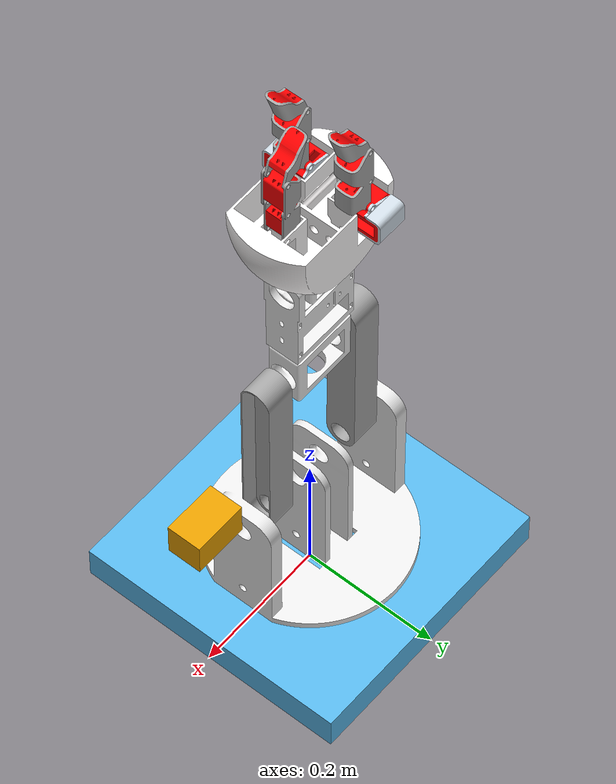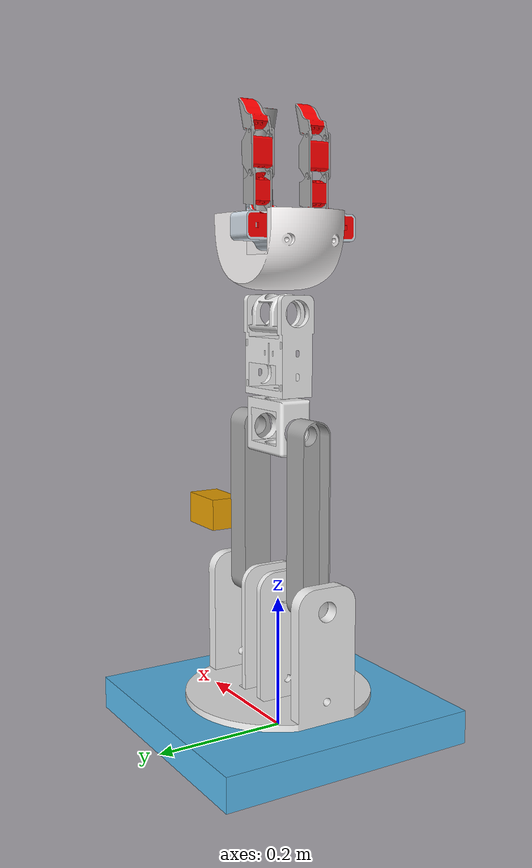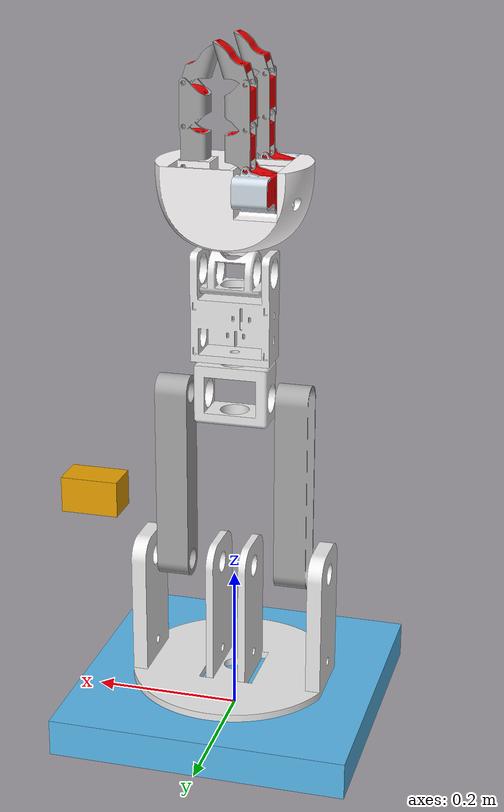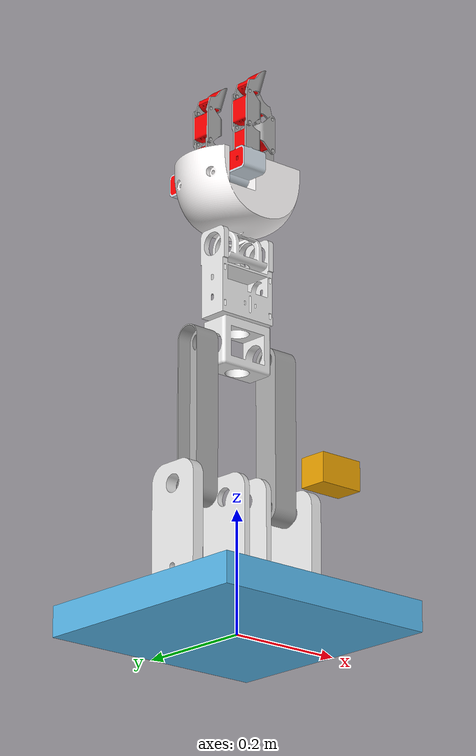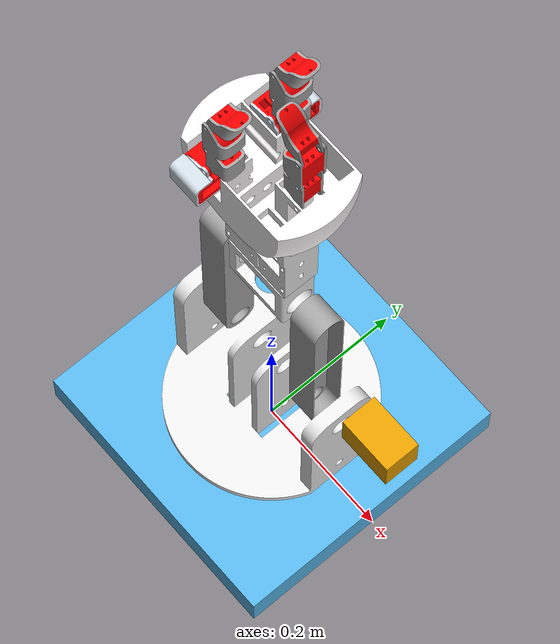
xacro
<?xml version="1.0" ?>
<robot xmlns:xacro="http://www.ros.org/wiki/xacro" name="robot">

    <!-- # include statements, much like import statements -->
    <xacro:include filename="$(find arm_urdf)/urdf/arm_urdf.xacro"/>
    <xacro:include filename="$(find arm_urdf)/urdf/arm_gazebo.xacro"/>
    <xacro:include filename="$(find arm_urdf)/urdf/arm_control.xacro"/>

    <!-- # constants -->
    <xacro:property name="arm_prefix" value="arm1" />

    <!-- # Etc -->
    <!-- NOTE: order of execution of xacro does not matter -->

    <!-- name must be kept as "world" for it is a Gazebo keyword for world origin -->
    <link name="world"/>

    <!-- using arm macro defined in arm_urdf.xacro to define robot -->
    <xacro:arm prefix="${arm_prefix}"/>
    <xacro:arm_gazebo_setting prefix="${arm_prefix}"/>
    <xacro:arm_control_setting prefix="${arm_prefix}" />

    <!-- connect the arm to world with fixed joint -->
    <joint name="base" type="fixed">
        <parent link="world" />
        <child link="${arm_prefix}_base_fixed" />
    </joint>

    <!--Kinect-->
    <!-- position of kinect has to be changed in common_sensors/urdf/sensors/kinect_properties.urdf.xacro-->

    <gazebo reference="${arm_prefix}_camera_link">
        <sensor name="${arm_prefix}_camera" type="depth">
            <update_rate>20</update_rate>
            <camera>
            <horizontal_fov>1.047198</horizontal_fov>
            <image>
                <width>640</width>
                <height>480</height>
                <format>R8G8B8</format>
            </image>
            <clip>
                <near>0.05</near>
                <far>3</far>
            </clip>
            </camera>
            <plugin name="${arm_prefix}_kinetic_camera_controller" filename="libgazebo_ros_openni_kinect.so">
            <baseline>0.2</baseline>
            <alwaysOn>true</alwaysOn>
            <updateRate>1.0</updateRate>
            <cameraName>${arm_prefix}_camera_ir</cameraName>
            <imageTopicName>/${arm_prefix}_camera/color/image_raw</imageTopicName>
            <cameraInfoTopicName>/${arm_prefix}_camera/color/camera_info</cameraInfoTopicName>
            <depthImageTopicName>/${arm_prefix}_camera/depth/image_raw</depthImageTopicName>
            <depthImageInfoTopicName>/${arm_prefix}_camera/depth/camera_info</depthImageInfoTopicName>
            <pointCloudTopicName>/${arm_prefix}_camera/depth/points</pointCloudTopicName>
            <frameName>${arm_prefix}_camera_link</frameName>
            <pointCloudCutoff>0.5</pointCloudCutoff>
            <pointCloudCutoffMax>3.0</pointCloudCutoffMax>
            <distortionK1>0.00000001</distortionK1>
            <distortionK2>0.00000001</distortionK2>
            <distortionK3>0.00000001</distortionK3>
            <distortionT1>0.00000001</distortionT1>
            <distortionT2>0.00000001</distortionT2>
            <CxPrime>0</CxPrime>
            <Cx>0</Cx>
            <Cy>0</Cy>
            <focalLength>0</focalLength>
            <hackBaseline>0</hackBaseline>
            </plugin>
        </sensor>
    </gazebo>

</robot>

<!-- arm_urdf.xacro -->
<robot xmlns:xacro="http://www.ros.org/wiki/xacro" name="robot">
    <!-- import  -->
    <xacro:include filename="$(find arm_urdf)/urdf/gripper_urdf.xacro"/>

    <xacro:macro name="arm" params="prefix">

        <!-- links -->

        <link name="${prefix}_base_fixed">
            <visual>
            <origin rpy="0 0 0" xyz="0 0 0.025"/>
            <geometry>
                <box size="0.4 0.4 0.05"/>
            </geometry>
            </visual>

            <collision>
            <origin rpy="0 0 0" xyz="0 0 0.025"/>
            <geometry>
                <box size="0.4 0.4 0.05"/>
            </geometry>
            </collision>

            <inertial>
            <mass value="0.5"/>
            <inertia ixx="0.4" ixy="0.0" ixz="0.0" iyy="0.4" iyz="0.0" izz="0.2"/>
            </inertial>
        </link>

        <link name="${prefix}_base">
            <visual>
            <origin rpy="0.0 0 0" xyz="0 0 0"/>
            <geometry>
                <mesh filename="package://arm_urdf/meshes/Base.dae"/>
            </geometry>
            </visual>

            <collision>
            <origin rpy="0.0 0 0" xyz="0 0 0"/>
            <geometry>
                <mesh filename="package://arm_urdf/meshes/Base.dae"/>
            </geometry>
            </collision>

            <inertial>
            <mass value="0.5"/>
            <inertia ixx="0.4" ixy="0.0" ixz="0.0" iyy="0.4" iyz="0.0" izz="0.2"/>
            </inertial>
        </link>

        <link name="${prefix}_bridge">
            <visual>
            <origin rpy="0.0 0 ${radians(-90)}" xyz="0.07 0 0.104"/>
            <geometry>
                <mesh filename="package://arm_urdf/meshes/Bridge.dae"/>
            </geometry>
            </visual>

            <collision>
            <origin rpy="0.0 0 ${radians(-90)}" xyz="0.07 0 0.104"/>
            <geometry>
                <mesh filename="package://arm_urdf/meshes/Bridge.dae"/>
            </geometry>
            </collision>

            <inertial>
            <mass value="0.5"/>
            <inertia ixx="0.4" ixy="0.0" ixz="0.0" iyy="0.4" iyz="0.0" izz="0.2"/>
            </inertial>
        </link>

        <link name="${prefix}_bridge2">
            <visual>
            <origin rpy="0.0 0 ${radians(90)}" xyz="-0.07 0 0.104"/>
            <geometry>
                <mesh filename="package://arm_urdf/meshes/Bridge.dae"/>
            </geometry>
            </visual>

            <collision>
            <origin rpy="0.0 0 ${radians(90)}" xyz="-0.07 0 0.104"/>
            <geometry>
                <mesh filename="package://arm_urdf/meshes/Bridge.dae"/>
            </geometry>
            </collision>

            <inertial>
            <mass value="0.5"/>
            <inertia ixx="0.4" ixy="0.0" ixz="0.0" iyy="0.4" iyz="0.0" izz="0.2"/>
            </inertial>
        </link>

        <link name="${prefix}_housing">
            <visual>
            <origin rpy="0.0 0 0" xyz="0 0 0"/>
            <geometry>
                <mesh filename="package://arm_urdf/meshes/Housing.dae"/>
            </geometry>
            </visual>

            <collision>
            <origin rpy="0.0 0 0" xyz="0 0 0"/>
            <geometry>
                <mesh filename="package://arm_urdf/meshes/Housing.dae"/>
            </geometry>
            </collision>

            <inertial>
            <mass value="0.5"/>
            <inertia ixx="0.4" ixy="0.0" ixz="0.0" iyy="0.4" iyz="0.0" izz="0.2"/>
            </inertial>
        </link>

        <link name="${prefix}_wrist_link">
            <visual>
            <origin rpy="0.0 0 0" xyz="0 0 0"/>
            <geometry>
                <mesh filename="package://arm_urdf/meshes/Wrist Link.dae"/>
            </geometry>
            </visual>

            <collision>
            <origin rpy="0.0 0 0" xyz="0 0 0"/>
            <geometry>
                <mesh filename="package://arm_urdf/meshes/Wrist Link.dae"/>
            </geometry>
            </collision>

            <inertial>
            <mass value="0.5"/>
            <inertia ixx="0.4" ixy="0.0" ixz="0.0" iyy="0.4" iyz="0.0" izz="0.2"/>
            </inertial>
        </link>

        <link name="${prefix}_wrist_cuff">
            <visual>
            <origin rpy="0.0 ${radians(180)} 0" xyz="0 0.027 -0.0255"/>
            <geometry>
                <mesh filename="package://arm_urdf/meshes/Wrist Cuff.dae"/>
            </geometry>
            </visual>

            <collision>
            <origin rpy="0.0 ${radians(180)} 0" xyz="0 0.027 -0.0255"/>
            <geometry>
                <mesh filename="package://arm_urdf/meshes/Wrist Cuff.dae"/>
            </geometry>
            </collision>

            <inertial>
            <mass value="0.5"/>
            <inertia ixx="0.4" ixy="0.0" ixz="0.0" iyy="0.4" iyz="0.0" izz="0.2"/>
            </inertial>
        </link>

        <!-- camera link -->
        <link name="${prefix}_camera_link">
            <visual>
            <origin rpy="0.0 ${radians(180)} 0" xyz="0 0 0"/>
            <geometry>
                <box size="0.08 0.05 0.05"/>
            </geometry>
            </visual>

            <collision>
            <origin rpy="0.0 ${radians(180)} 0" xyz="0 0 0"/>
            <geometry>
                <box size="0.08 0.05 0.05"/>
            </geometry>
            </collision>

            <inertial>
            <mass value="0.5"/>
            <inertia ixx="0.4" ixy="0.0" ixz="0.0" iyy="0.4" iyz="0.0" izz="0.2"/>
            </inertial>
        </link>

        <!-- gripper -->
        <xacro:gripper prefix="${prefix}"/>

        <!-- joints -->
        <joint name="${prefix}_base_fixed_base_joint" type="revolute">
            <origin rpy="0 0 0" xyz="0 0 0.05"/>
            <axis xyz="0 0 1"/>
            <limit effort="1000.0" lower="${radians(-180)}" upper="${radians(180)}" velocity="2.5"/>
            <parent link="${prefix}_base_fixed" />
            <child link="${prefix}_base" />

            <dynamics D="1" K="7000" mu_coulomb="0" mu_viscous="16" damping="0.003" friction="0.0"/>
        </joint>

        <joint name="${prefix}_base_bridge_joint" type="revolute">
            <origin rpy="0.0 0 0" xyz="0.0 0 0.165"/>
            <axis xyz="1 0 0"/>
            <limit effort="1000.0" lower="${radians(-120)}" upper="${radians(120)}" velocity="2.5"/>
            <parent link="${prefix}_base" />
            <child link="${prefix}_bridge" />

            <dynamics D="1" K="7000" mu_coulomb="0" mu_viscous="16" damping="0.003" friction="0.0"/>
        </joint>

        <joint name="${prefix}_bridge_bridge2_joint" type="fixed">
            <origin rpy="0.0 0 0" xyz="0.0 0 0"/>
            <parent link="${prefix}_bridge" />
            <child link="${prefix}_bridge2" />
        </joint>

        <joint name="${prefix}_bridge_housing_joint" type="revolute">
            <origin rpy="0 0 0" xyz="0 0 0.24875"/>
            <axis xyz="1 0 0"/>
            <limit effort="1000.0" lower="${radians(-165)}" upper="${radians(165)}" velocity="2.5"/>
            <parent link="${prefix}_bridge" />
            <child link="${prefix}_housing" />

            <dynamics D="1" K="7000" mu_coulomb="0" mu_viscous="16" damping="0.003" friction="0.0"/>
        </joint>

        <joint name="${prefix}_housing_wrist_link_joint" type="revolute">
            <origin rpy="0 0 0" xyz="0 0 0.045"/>
            <axis xyz="0 0 1"/>
            <limit effort="1000.0" lower="${radians(-180)}" upper="${radians(180)}" velocity="2.5"/>
            <parent link="${prefix}_housing" />
            <child link="${prefix}_wrist_link" />

            <dynamics D="1" K="7000" mu_coulomb="0" mu_viscous="16" damping="0.003" friction="0.0"/>
        </joint>

        <joint name="${prefix}_wrist_link_wrist_cuff_joint" type="revolute">
            <origin rpy="0 0 0" xyz="0 0.0 0.122"/>
            <axis xyz="1 0 0"/>
            <limit effort="1000.0" lower="${radians(-85)}" upper="${radians(85)}" velocity="2.5"/>
            <parent link="${prefix}_wrist_link" />
            <child link="${prefix}_wrist_cuff" />

            <dynamics D="1" K="7000" mu_coulomb="0" mu_viscous="16" damping="0.003" friction="0.0"/>
        </joint>

        <!-- camera joint -->
        <joint name="${prefix}_base_fixed_camera_link_joint" type="fixed">
            <origin rpy="0 0 0" xyz="0.2 0 0.3"/>
            <parent link="${prefix}_base_fixed" />
            <child link="${prefix}_camera_link" />
        </joint>

        <!-- gripper joint  -->
        <joint name="${prefix}_wrist_cuff_palm_joint" type="fixed">
            <origin rpy="0 0 0" xyz="0 0.0 0.03"/>
            <parent link="${prefix}_wrist_cuff" />
            <child link="${prefix}_palm" />
        </joint>

    </xacro:macro>
</robot>

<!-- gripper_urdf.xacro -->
<robot xmlns:xacro="http://www.ros.org/wiki/xacro">
    <xacro:macro name="gripper" params="prefix">

        <!-- links -->
        <link name="${prefix}_palm">
            <visual>
            <origin rpy="0 0 0" xyz="0 0 0.11"/>
            <geometry>
                <mesh filename="package://arm_urdf/meshes/Palm.dae"/>
            </geometry>
            </visual>

            <collision>
            <origin rpy="0 0 0" xyz="0 0 0.11"/>
            <geometry>
                <mesh filename="package://arm_urdf/meshes/Palm.dae"/>
            </geometry>
            </collision>

            <inertial>
            <mass value="0.5"/>
            <inertia ixx="0.4" ixy="0.0" ixz="0.0" iyy="0.4" iyz="0.0" izz="0.2"/>
            </inertial>
        </link>

        <!-- left finger -->
        <link name="${prefix}_hub_left">
            <visual>
            <origin rpy="0 0 ${radians(90)}" xyz="0 0.02 0.002"/>
            <geometry>
                <mesh filename="package://arm_urdf/meshes/Hub Left.dae"/>
            </geometry>
            </visual>

            <collision>
            <origin rpy="0 0 ${radians(90)}" xyz="0 0.02 0.002"/>
            <geometry>
                <mesh filename="package://arm_urdf/meshes/Hub Left.dae"/>
            </geometry>
            </collision>

            <inertial>
            <mass value="0.5"/>
            <inertia ixx="0.4" ixy="0.0" ixz="0.0" iyy="0.4" iyz="0.0" izz="0.2"/>
            </inertial>
        </link>

        <link name="${prefix}_finger_left">
            <visual>
            <origin rpy="0 ${radians(90)} ${radians(90)}" xyz="-0.002 0 0.02"/>
            <geometry>
                <mesh filename="package://arm_urdf/meshes/Finger Assembly.dae"/>
            </geometry>
            </visual>

            <collision>
            <origin rpy="0 ${radians(90)} ${radians(90)}" xyz="-0.002 0 0.02"/>
            <geometry>
                <mesh filename="package://arm_urdf/meshes/Finger Assembly.dae"/>
            </geometry>
            </collision>

            <inertial>
            <mass value="0.5"/>
            <inertia ixx="0.4" ixy="0.0" ixz="0.0" iyy="0.4" iyz="0.0" izz="0.2"/>
            </inertial>
        </link>

        <!-- right finger -->
        <link name="${prefix}_hub_right">
            <visual>
            <origin rpy="0 0 ${radians(90)}" xyz="0 0.02 0.002"/>
            <geometry>
                <mesh filename="package://arm_urdf/meshes/Hub Right.dae"/>
            </geometry>
            </visual>

            <collision>
            <origin rpy="0 0 ${radians(90)}" xyz="0 0.02 0.002"/>
            <geometry>
                <mesh filename="package://arm_urdf/meshes/Hub Right.dae"/>
            </geometry>
            </collision>

            <inertial>
            <mass value="0.5"/>
            <inertia ixx="0.4" ixy="0.0" ixz="0.0" iyy="0.4" iyz="0.0" izz="0.2"/>
            </inertial>
        </link>

        <link name="${prefix}_finger_right">
            <visual>
            <origin rpy="0 ${radians(90)} ${radians(90)}" xyz="-0.002 0 0.02"/>
            <geometry>
                <mesh filename="package://arm_urdf/meshes/Finger Assembly.dae"/>
            </geometry>
            </visual>

            <collision>
            <origin rpy="0 ${radians(90)} ${radians(90)}" xyz="-0.002 0 0.02"/>
            <geometry>
                <mesh filename="package://arm_urdf/meshes/Finger Assembly.dae"/>
            </geometry>
            </collision>

            <inertial>
            <mass value="0.5"/>
            <inertia ixx="0.4" ixy="0.0" ixz="0.0" iyy="0.4" iyz="0.0" izz="0.2"/>
            </inertial>
        </link>

        <link name="${prefix}_finger_thumb">
            <visual>
            <origin rpy="0 ${radians(90)} ${radians(90)}" xyz="-0.002 0 0.02"/>
            <geometry>
                <mesh filename="package://arm_urdf/meshes/Finger Assembly.dae"/>
            </geometry>
            </visual>

            <collision>
            <origin rpy="0 ${radians(90)} ${radians(90)}" xyz="-0.002 0 0.02"/>
            <geometry>
                <mesh filename="package://arm_urdf/meshes/Finger Assembly.dae"/>
            </geometry>
            </collision>

            <inertial>
            <mass value="0.5"/>
            <inertia ixx="0.4" ixy="0.0" ixz="0.0" iyy="0.4" iyz="0.0" izz="0.2"/>
            </inertial>
        </link>

        <!-- joints -->

        <!-- left finger joints  -->
        <joint name="${prefix}_palm_hub_left_joint" type="revolute">
            <origin rpy="0 0 0" xyz="-0.065 -0.038 0.068"/>
            <axis xyz="1 0 0"/>
            <limit effort="1000.0" lower="${radians(0)}" upper="${radians(35)}" velocity="0.5"/>
            <parent link="${prefix}_palm" />
            <child link="${prefix}_hub_left" />

            <dynamics D="1" K="7000" mu_coulomb="0" mu_viscous="16" damping="0.003" friction="0.0"/>
        </joint>

        <joint name="${prefix}_hub_left_finger_left_joint" type="revolute">
            <origin rpy="0 0 0" xyz="0.033 -0.0145 0.043"/>
            <axis xyz="0 1 0"/>
            <limit effort="1000.0" lower="${radians(-80)}" upper="${radians(15)}" velocity="0.5"/>
            <parent link="${prefix}_hub_left" />
            <child link="${prefix}_finger_left" />

            <dynamics D="1" K="7000" mu_coulomb="0" mu_viscous="16" damping="0.003" friction="0.0"/>
        </joint>

        <!-- right finger joints  -->
        <joint name="${prefix}_palm_hub_right_joint" type="revolute">
            <origin rpy="0 0 0" xyz="-0.065 0.038 0.068"/>
            <axis xyz="1 0 0"/>
            <limit effort="1000.0" lower="${radians(-35)}" upper="${radians(0)}" velocity="0.5"/>
            <parent link="${prefix}_palm" />
            <child link="${prefix}_hub_right" />

            <dynamics D="1" K="7000" mu_coulomb="0" mu_viscous="16" damping="0.003" friction="0.0"/>
        </joint>

        <joint name="${prefix}_hub_right_finger_right_joint" type="revolute">
            <origin rpy="0 0 0" xyz="0.033 0.0025 0.043"/>
            <axis xyz="0 1 0"/>
            <limit effort="1000.0" lower="${radians(-80)}" upper="${radians(15)}" velocity="0.5"/>
            <parent link="${prefix}_hub_right" />
            <child link="${prefix}_finger_right" />

            <dynamics D="1" K="7000" mu_coulomb="0" mu_viscous="16" damping="0.003" friction="0.0"/>
        </joint>

        <!-- thumb finger joint -->
        <joint name="${prefix}_palm_finger_thumb_joint" type="revolute">
            <origin rpy="0 0 ${radians(180)}" xyz="0.062 0.007 0.103"/>
            <axis xyz="0 1 0"/>
            <limit effort="1000.0" lower="${radians(-20)}" upper="${radians(10)}" velocity="0.5"/>
            <parent link="${prefix}_palm" />
            <child link="${prefix}_finger_thumb" />

            <dynamics D="1" K="7000" mu_coulomb="0" mu_viscous="16" damping="0.003" friction="0.0"/>
        </joint>

    </xacro:macro>
</robot>
